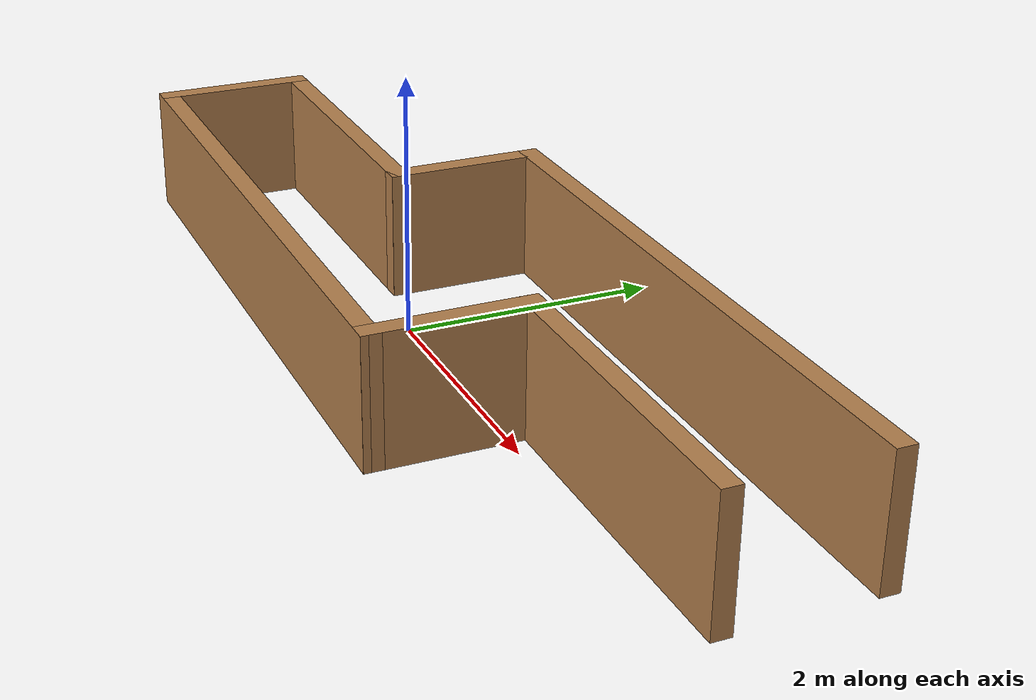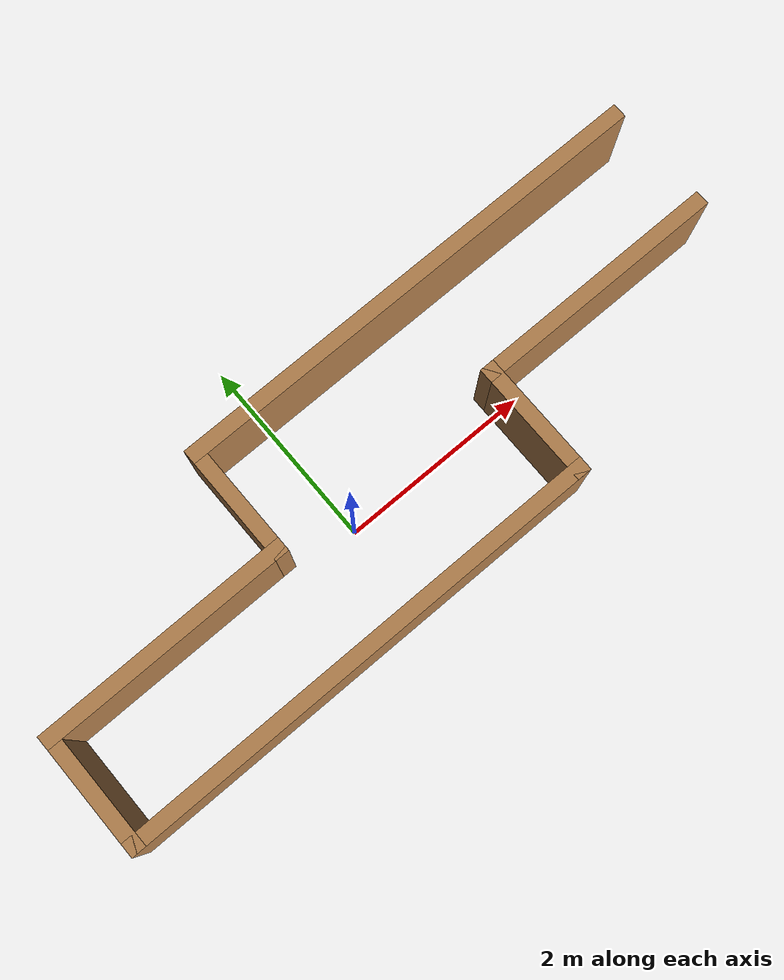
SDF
<?xml version='1.0'?>
<sdf version='1.6'>
  <model name='curbs_maze'>
    <pose frame=''>0.536952 0.174043 0 0 -0 0</pose>
    <link name='Wall_0'>
      <collision name='Wall_0_Collision'>
        <geometry>
          <box>
            <size>1.29351 0.15 1</size>
          </box>
        </geometry>
        <pose frame=''>0 0 0.5 0 -0 0</pose>
      </collision>
      <visual name='Wall_0_Visual'>
        <pose frame=''>0 0 0.5 0 -0 0</pose>
        <geometry>
          <box>
            <size>1.29351 0.15 1</size>
          </box>
        </geometry>
        <material>
          <script>
            <uri>file://media/materials/scripts/gazebo.material</uri>
            <name>Gazebo/Wood</name>
          </script>
          <ambient>1 1 1 1</ambient>
        </material>
        <meta>
          <layer>0</layer>
        </meta>
      </visual>
      <pose frame=''>-3.71095 -0.562043 0 0 -0 1.5708</pose>
    </link>
    <link name='Wall_1'>
      <collision name='Wall_1_Collision'>
        <geometry>
          <box>
            <size>2.6271 0.15 1</size>
          </box>
        </geometry>
        <pose frame=''>0 0 0.5 0 -0 0</pose>
      </collision>
      <visual name='Wall_1_Visual'>
        <pose frame=''>0 0 0.5 0 -0 0</pose>
        <geometry>
          <box>
            <size>2.6271 0.15 1</size>
          </box>
        </geometry>
        <material>
          <script>
            <uri>file://media/materials/scripts/gazebo.material</uri>
            <name>Gazebo/Wood</name>
          </script>
          <ambient>1 1 1 1</ambient>
        </material>
        <meta>
          <layer>0</layer>
        </meta>
      </visual>
      <pose frame=''>-2.47245 0.012957 0 0 -0 0.002422</pose>
    </link>
    <link name='Wall_2'>
      <collision name='Wall_2_Collision'>
        <geometry>
          <box>
            <size>1.27435 0.15 1</size>
          </box>
        </geometry>
        <pose frame=''>0 0 0.5 0 -0 0</pose>
      </collision>
      <visual name='Wall_2_Visual'>
        <pose frame=''>0 0 0.5 0 -0 0</pose>
        <geometry>
          <box>
            <size>1.27435 0.15 1</size>
          </box>
        </geometry>
        <material>
          <script>
            <uri>file://media/materials/scripts/gazebo.material</uri>
            <name>Gazebo/Wood</name>
          </script>
          <ambient>1 1 1 1</ambient>
        </material>
        <meta>
          <layer>0</layer>
        </meta>
      </visual>
      <pose frame=''>-1.23395 0.577957 0 0 -0 1.5708</pose>
    </link>
    <link name='Wall_3'>
      <collision name='Wall_3_Collision'>
        <geometry>
          <box>
            <size>5.09452 0.15 1</size>
          </box>
        </geometry>
        <pose frame=''>0 0 0.5 0 -0 0</pose>
      </collision>
      <visual name='Wall_3_Visual'>
        <pose frame=''>0 0 0.5 0 -0 0</pose>
        <geometry>
          <box>
            <size>5.09452 0.15 1</size>
          </box>
        </geometry>
        <material>
          <script>
            <uri>file://media/materials/scripts/gazebo.material</uri>
            <name>Gazebo/Wood</name>
          </script>
          <ambient>1 1 1 1</ambient>
        </material>
        <meta>
          <layer>0</layer>
        </meta>
      </visual>
      <pose frame=''>1.23855 1.13996 0 0 -0 0</pose>
    </link>
    <link name='Wall_5'>
      <collision name='Wall_5_Collision'>
        <geometry>
          <box>
            <size>2.62227 0.15 1</size>
          </box>
        </geometry>
        <pose frame=''>0 0 0.5 0 -0 0</pose>
      </collision>
      <visual name='Wall_5_Visual'>
        <pose frame=''>0 0 0.5 0 -0 0</pose>
        <geometry>
          <box>
            <size>2.62227 0.15 1</size>
          </box>
        </geometry>
        <material>
          <script>
            <uri>file://media/materials/scripts/gazebo.material</uri>
            <name>Gazebo/Wood</name>
          </script>
          <ambient>1 1 1 1</ambient>
        </material>
        <meta>
          <layer>0</layer>
        </meta>
      </visual>
      <pose frame=''>2.47505 0.015957 0 0 -0 3.14159</pose>
    </link>
    <link name='Wall_6'>
      <collision name='Wall_6_Collision'>
        <geometry>
          <box>
            <size>1.30553 0.15 1</size>
          </box>
        </geometry>
        <pose frame=''>0 0 0.5 0 -0 0</pose>
      </collision>
      <visual name='Wall_6_Visual'>
        <pose frame=''>0 0 0.5 0 -0 0</pose>
        <geometry>
          <box>
            <size>1.30553 0.15 1</size>
          </box>
        </geometry>
        <material>
          <script>
            <uri>file://media/materials/scripts/gazebo.material</uri>
            <name>Gazebo/Wood</name>
          </script>
          <ambient>1 1 1 1</ambient>
        </material>
        <meta>
          <layer>0</layer>
        </meta>
      </visual>
      <pose frame=''>1.24005 -0.562043 0 0 -0 -1.56907</pose>
    </link>
    <link name='Wall_7'>
      <collision name='Wall_7_Collision'>
        <geometry>
          <box>
            <size>5.1021 0.15 1</size>
          </box>
        </geometry>
        <pose frame=''>0 0 0.5 0 -0 0</pose>
      </collision>
      <visual name='Wall_7_Visual'>
        <pose frame=''>0 0 0.5 0 -0 0</pose>
        <geometry>
          <box>
            <size>5.1021 0.15 1</size>
          </box>
        </geometry>
        <material>
          <script>
            <uri>file://media/materials/scripts/gazebo.material</uri>
            <name>Gazebo/Wood</name>
          </script>
          <ambient>1 1 1 1</ambient>
        </material>
        <meta>
          <layer>0</layer>
        </meta>
      </visual>
      <pose frame=''>-1.23495 -1.13704 0 0 -0 3.14038</pose>
    </link>
    <static>1</static>
  </model>
</sdf>
